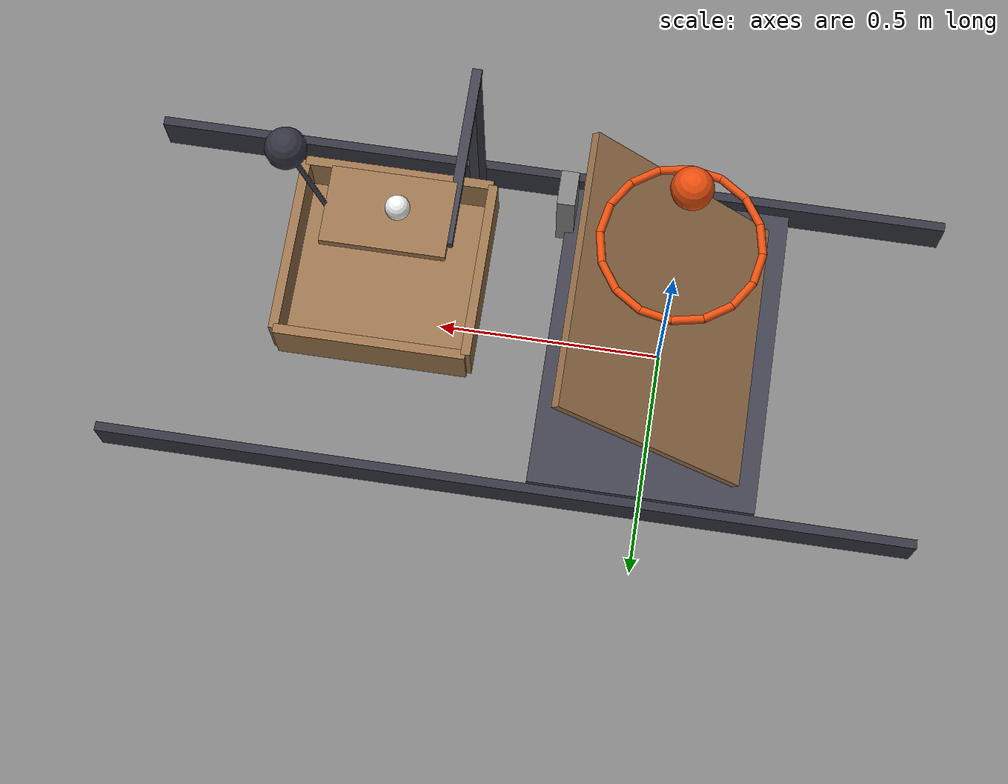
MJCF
<mujoco model="falling_ball_tips_a_release_flap">
  <compiler angle="radian"/>
  <option timestep="0.002"/>
  <worldbody>
    <geom name="floor" type="plane" size="4 4 0.1" friction="0.015 0.001 0.001"/>
    <body name="cart" pos="0 0 0.04">
      <freejoint/>
      <geom name="cart" type="box" pos="0 0 0" size="0.25 0.35 0.04" mass="0.7" friction="0.015 0.001 0.001" solref="0.01 1" rgba="0.25 0.25 0.3 1"/>
      <geom name="sloped back" type="box" pos="0 0 0.26" size="0.282843 0.3 0.01" euler="0 -0.785398 0" mass="0.1" friction="0.04 0.001 0.001" solref="0.01 1" rgba="0.6 0.45 0.3 1"/>
      <geom name="cart nose" type="box" pos="0.25 -0.28 0.1" size="0.02 0.04 0.1" mass="0.02" solref="0.01 1"/>
    </body>
    <body name="left guide">
      <geom name="left guide" type="box" pos="0.3 0.37 0.05" size="0.9 0.01 0.05" friction="0.015 0.005 0.0001" rgba="0.2 0.2 0.25 1"/>
    </body>
    <body name="right guide">
      <geom name="right guide" type="box" pos="0.3 -0.37 0.05" size="0.9 0.01 0.05" friction="0.015 0.005 0.0001" rgba="0.2 0.2 0.25 1"/>
    </body>
    <body name="hoop">
      <geom name="hoop_00" type="capsule" size="0.008" fromto="0.158 0 0.7 0.145973 0.060464 0.7" rgba="0.9 0.3 0.05 1"/>
      <geom name="hoop_01" type="capsule" size="0.008" fromto="0.145973 0.060464 0.7 0.111723 0.111723 0.7" rgba="0.9 0.3 0.05 1"/>
      <geom name="hoop_02" type="capsule" size="0.008" fromto="0.111723 0.111723 0.7 0.060464 0.145973 0.7" rgba="0.9 0.3 0.05 1"/>
      <geom name="hoop_03" type="capsule" size="0.008" fromto="0.060464 0.145973 0.7 9.67471e-18 0.158 0.7" rgba="0.9 0.3 0.05 1"/>
      <geom name="hoop_04" type="capsule" size="0.008" fromto="9.67471e-18 0.158 0.7 -0.060464 0.145973 0.7" rgba="0.9 0.3 0.05 1"/>
      <geom name="hoop_05" type="capsule" size="0.008" fromto="-0.060464 0.145973 0.7 -0.111723 0.111723 0.7" rgba="0.9 0.3 0.05 1"/>
      <geom name="hoop_06" type="capsule" size="0.008" fromto="-0.111723 0.111723 0.7 -0.145973 0.060464 0.7" rgba="0.9 0.3 0.05 1"/>
      <geom name="hoop_07" type="capsule" size="0.008" fromto="-0.145973 0.060464 0.7 -0.158 1.93494e-17 0.7" rgba="0.9 0.3 0.05 1"/>
      <geom name="hoop_08" type="capsule" size="0.008" fromto="-0.158 1.93494e-17 0.7 -0.145973 -0.060464 0.7" rgba="0.9 0.3 0.05 1"/>
      <geom name="hoop_09" type="capsule" size="0.008" fromto="-0.145973 -0.060464 0.7 -0.111723 -0.111723 0.7" rgba="0.9 0.3 0.05 1"/>
      <geom name="hoop_10" type="capsule" size="0.008" fromto="-0.111723 -0.111723 0.7 -0.060464 -0.145973 0.7" rgba="0.9 0.3 0.05 1"/>
      <geom name="hoop_11" type="capsule" size="0.008" fromto="-0.060464 -0.145973 0.7 -2.90241e-17 -0.158 0.7" rgba="0.9 0.3 0.05 1"/>
      <geom name="hoop_12" type="capsule" size="0.008" fromto="-2.90241e-17 -0.158 0.7 0.060464 -0.145973 0.7" rgba="0.9 0.3 0.05 1"/>
      <geom name="hoop_13" type="capsule" size="0.008" fromto="0.060464 -0.145973 0.7 0.111723 -0.111723 0.7" rgba="0.9 0.3 0.05 1"/>
      <geom name="hoop_14" type="capsule" size="0.008" fromto="0.111723 -0.111723 0.7 0.145973 -0.060464 0.7" rgba="0.9 0.3 0.05 1"/>
      <geom name="hoop_15" type="capsule" size="0.008" fromto="0.145973 -0.060464 0.7 0.158 -3.86988e-17 0.7" rgba="0.9 0.3 0.05 1"/>
    </body>
    <body name="ball1" pos="0 0 0.97071">
      <freejoint/>
      <geom name="ball1" type="sphere" pos="0 0 0" size="0.04" mass="0.5" condim="6" friction="0.04 0.001 0.001" solref="0.01 1" rgba="0.9 0.3 0.05 1"/>
    </body>
    <body name="box">
      <geom name="box_base" type="box" pos="0.6 0 0.3" size="0.2 0.19 0.01" friction="0.9 0.02 0.03" solref="0.01 1" rgba="0.6 0.45 0.3 1"/>
      <geom name="box_near_wall" type="box" pos="0.4 0 0.35" size="0.01 0.19 0.06" friction="0.9 0.02 0.03" solref="0.01 1" rgba="0.6 0.45 0.3 1"/>
      <geom name="box_far_wall" type="box" pos="0.8 0 0.35" size="0.01 0.19 0.06" friction="0.9 0.02 0.03" solref="0.01 1" rgba="0.6 0.45 0.3 1"/>
      <geom name="box_left_wall" type="box" pos="0.6 0.19 0.35" size="0.2 0.01 0.06" friction="0.9 0.02 0.03" solref="0.01 1" rgba="0.6 0.45 0.3 1"/>
      <geom name="box_right_wall" type="box" pos="0.6 -0.19 0.35" size="0.2 0.01 0.06" friction="0.9 0.02 0.03" solref="0.01 1" rgba="0.6 0.45 0.3 1"/>
    </body>
    <body name="flap" pos="0.7 0 0.65">
      <joint name="release_hinge" type="hinge" pos="0 0 0" axis="0 1 0" limited="true" range="-1.22173 0" damping="0.004" armature="0.0002"/>
      <geom name="flap" type="box" pos="-0.125 0 0" size="0.125 0.08 0.01" mass="0.02" friction="0.2 0.002 0.002" solref="0.01 1" rgba="0.6 0.45 0.3 1"/>
      <geom name="flap crossbar" type="box" pos="-0.25 -0.14 0" size="0.01 0.19 0.01" mass="0.005" rgba="0.25 0.25 0.3 1"/>
      <geom name="flap striker" type="box" pos="-0.25 -0.28 -0.27" size="0.01 0.04 0.27" mass="0.005" solref="0.01 1" rgba="0.25 0.25 0.3 1"/>
      <geom name="flap counterweight" type="sphere" pos="0.05 0 0.25" size="0.04" mass="0.25" solref="0.01 1" rgba="0.2 0.2 0.25 1"/>
      <geom name="counterweight stem" type="capsule" size="0.005" fromto="0 0 0 0.05 0 0.25" mass="0.005" rgba="0.25 0.25 0.3 1"/>
    </body>
    <body name="ball2" pos="0.555 0 0.685">
      <freejoint/>
      <geom name="ball2" type="sphere" pos="0 0 0" size="0.025" mass="0.025" condim="6" friction="0.8 0.02 0.03" solref="0.01 1" rgba="0.95 0.95 0.95 1"/>
    </body>
  </worldbody>
  <keyframe>
    <key name="start" qpos="0 0 0.04 1 0 0 0 0 0 0.97071 1 0 0 0 0 0.555 0 0.685 1 0 0 0" qvel="0 0 0 0 0 0 0 0 0 0 0 0 0 0 0 0 0 0 0"/>
  </keyframe>
</mujoco>
